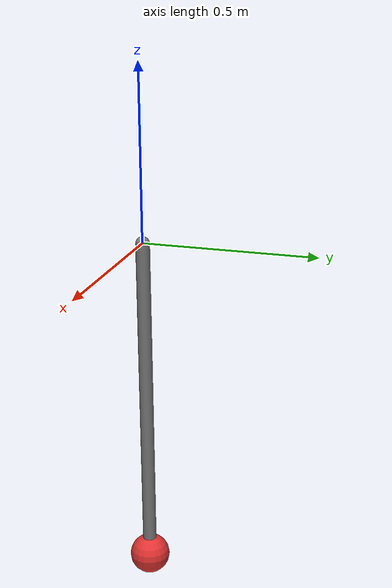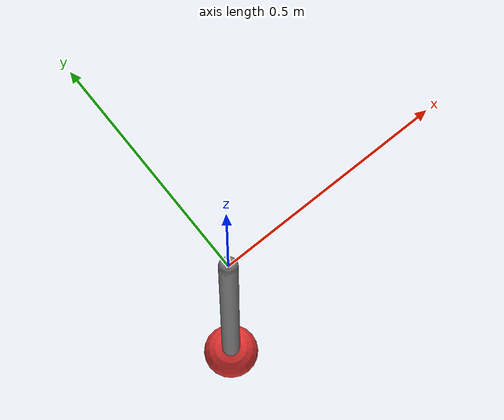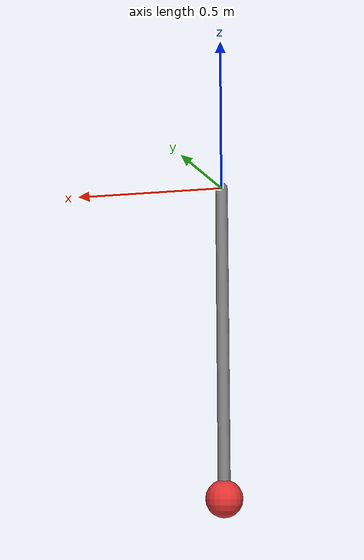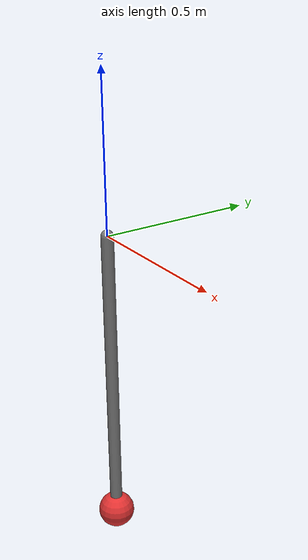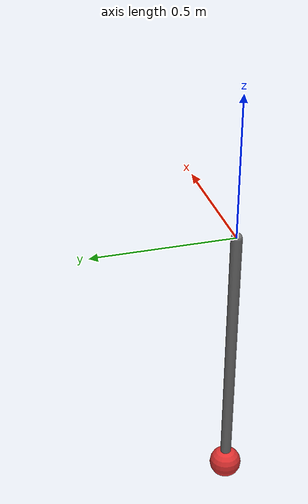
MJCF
<mujoco model="pendulum">
  <compiler inertiafromgeom="false" angle="radian"/>

  <option gravity="0 0 -9.81" timestep="0.002"/>

  <worldbody>

    <body name="base" pos="0 0 0">

      <body name="link1" pos="0 0 0">
        <inertial pos="0 0 -0.5" mass="1.0" diaginertia="0.09 0.09 0.001"/>

        <joint
          name="hinge"
          type="hinge"
          axis="0 1 0"
          limited="true"
          range="-3.1416 3.1416"
          damping="0.01"/>

        <geom type="capsule" fromto="0 0 0 0 0 -1" size="0.02" density="0"/>
        <body name="tip_mass" pos="0 0 -1">
          <inertial pos="0 0 0" mass="0.7" diaginertia="0.002 0.002 0.002"/>
          <geom
            type="sphere"
            size="0.06"
            density="0"
            rgba="0.9 0.2 0.2 1"
            contype="0"
            conaffinity="0"/>
        </body>

      </body>

    </body>

  </worldbody>

  <actuator>
    <motor joint="hinge" ctrlrange="-20 20"/>
  </actuator>

</mujoco>
